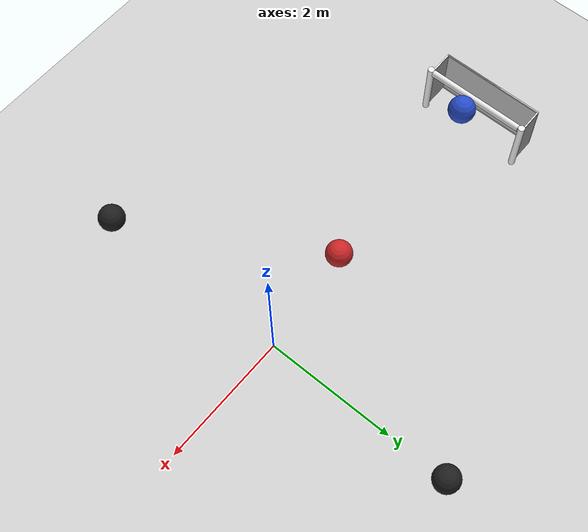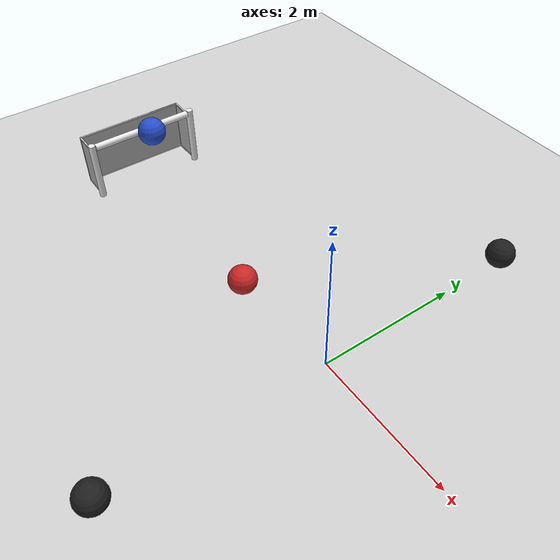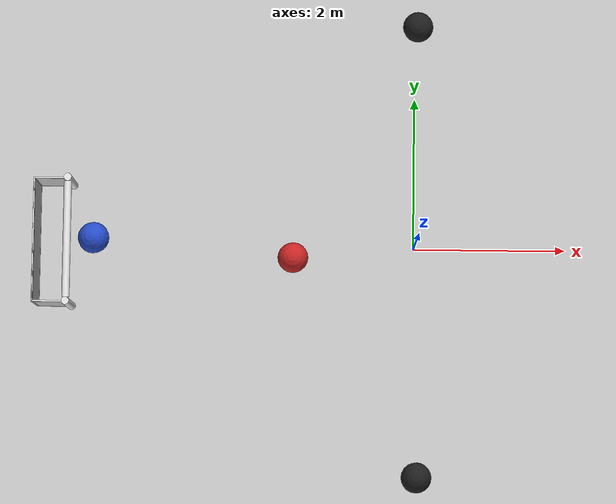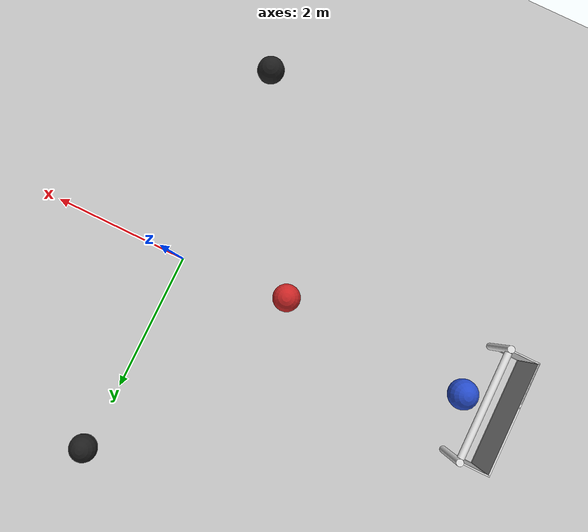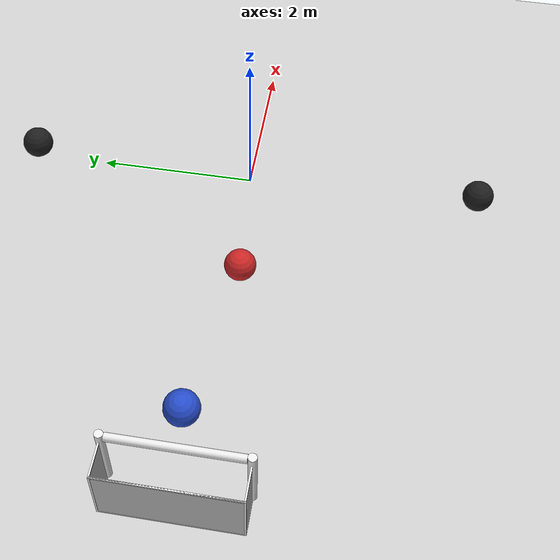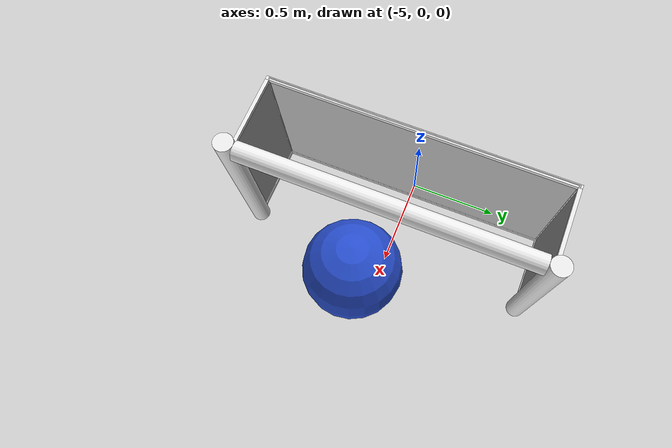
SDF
<sdf version="1.7">
 <world name="default">
  <light name="sun" type="directional">
   <pose>0 0 10 0 -0 0</pose>
   <diffuse>0.8 0.8 0.8 1</diffuse>
   <specular>0.2 0.2 0.2 1</specular>
   <attenuation>
    <range>1000</range>
    <constant>0.9</constant>
    <linear>0.01</linear>
    <quadratic>0.001</quadratic>
   </attenuation>
   <direction>-0.5 0.1 -0.9</direction>
   <spot><inner_angle>0</inner_angle><outer_angle>0</outer_angle><falloff>0</falloff></spot>
  </light>
  <model name="ground_plane">
   <static>1</static>
   <link name="link">
    <collision name="collision">
     <geometry><plane><normal>0 0 1</normal><size>100 100</size></plane></geometry>
     <surface>
      <contact><collide_bitmask>65535</collide_bitmask></contact>
      <friction><ode><mu>100</mu><mu2>50</mu2></ode></friction>
     </surface>
    </collision>
    <visual name="visual">
     <cast_shadows>0</cast_shadows>
     <geometry><plane><normal>0 0 1</normal><size>100 100</size></plane></geometry>
     <material>
      <script><uri>file://media/materials/scripts/gazebo.material</uri><name>Gazebo/Grey</name></script>
     </material>
    </visual>
   </link>
  </model>
  <model name="RoboCup 2014 SPL Goal">
   <static>1</static>
   <link name="left_post">
    <pose>0 0.8 0.45 0 -0 0</pose>
    <collision name="collision">
     <geometry><cylinder><radius>0.05</radius><length>0.9</length></cylinder></geometry>
    </collision>
    <visual name="visual">
     <geometry><cylinder><radius>0.05</radius><length>0.9</length></cylinder></geometry>
     <material>
      <script><uri>file://media/materials/scripts/gazebo.material</uri><name>Gazebo/White</name></script>
     </material>
    </visual>
   </link>
   <link name="left_support_horiz_lower">
    <pose>0.24 0.8 0.01 0 -0 0</pose>
    <collision name="collision"><geometry><box><size>0.38 0.02 0.02</size></box></geometry></collision>
    <visual name="visual">
     <geometry><box><size>0.38 0.02 0.02</size></box></geometry>
     <material>
      <script><uri>file://media/materials/scripts/gazebo.material</uri><name>Gazebo/White</name></script>
     </material>
    </visual>
   </link>
   <link name="left_support_horiz_upper">
    <pose>0.24 0.8 0.79 0 -0 0</pose>
    <collision name="collision"><geometry><box><size>0.38 0.02 0.02</size></box></geometry></collision>
    <visual name="visual">
     <geometry><box><size>0.38 0.02 0.02</size></box></geometry>
     <material>
      <script><uri>file://media/materials/scripts/gazebo.material</uri><name>Gazebo/White</name></script>
     </material>
    </visual>
   </link>
   <link name="left_support_vertical">
    <pose>0.44 0.8 0.4 3.14159 1.57079 3.14159</pose>
    <collision name="collision"><geometry><box><size>0.8 0.02 0.02</size></box></geometry></collision>
    <visual name="visual">
     <geometry><box><size>0.8 0.02 0.02</size></box></geometry>
     <material>
      <script><uri>file://media/materials/scripts/gazebo.material</uri><name>Gazebo/White</name></script>
     </material>
    </visual>
   </link>
   <link name="right_support_horiz_lower">
    <pose>0.24 -0.8 0.01 0 -0 0</pose>
    <collision name="collision"><geometry><box><size>0.38 0.02 0.02</size></box></geometry></collision>
    <visual name="visual">
     <geometry><box><size>0.38 0.02 0.02</size></box></geometry>
     <material>
      <script><uri>file://media/materials/scripts/gazebo.material</uri><name>Gazebo/White</name></script>
     </material>
    </visual>
   </link>
   <link name="right_support_horiz_upper">
    <pose>0.24 -0.8 0.79 0 -0 0</pose>
    <collision name="collision"><geometry><box><size>0.38 0.02 0.02</size></box></geometry></collision>
    <visual name="visual">
     <geometry><box><size>0.38 0.02 0.02</size></box></geometry>
     <material>
      <script><uri>file://media/materials/scripts/gazebo.material</uri><name>Gazebo/White</name></script>
     </material>
    </visual>
   </link>
   <link name="right_support_vertical">
    <pose>0.44 -0.8 0.4 3.14159 1.57079 3.14159</pose>
    <collision name="collision"><geometry><box><size>0.8 0.02 0.02</size></box></geometry></collision>
    <visual name="visual">
     <geometry><box><size>0.8 0.02 0.02</size></box></geometry>
     <material>
      <script><uri>file://media/materials/scripts/gazebo.material</uri><name>Gazebo/White</name></script>
     </material>
    </visual>
   </link>
   <link name="center_support_horiz_lower">
    <pose>0.44 0 0.01 3.14159 1.57079 3.14159</pose>
    <collision name="collision"><geometry><box><size>0.02 1.58 0.02</size></box></geometry></collision>
    <visual name="visual">
     <geometry><box><size>0.02 1.58 0.02</size></box></geometry>
     <material>
      <script><uri>file://media/materials/scripts/gazebo.material</uri><name>Gazebo/White</name></script>
     </material>
    </visual>
   </link>
   <link name="center_support_horiz_upper">
    <pose>0.44 0 0.79 3.14159 1.57079 3.14159</pose>
    <collision name="collision"><geometry><box><size>0.02 1.58 0.02</size></box></geometry></collision>
    <visual name="visual">
     <geometry><box><size>0.02 1.58 0.02</size></box></geometry>
     <material>
      <script><uri>file://media/materials/scripts/gazebo.material</uri><name>Gazebo/White</name></script>
     </material>
    </visual>
   </link>
   <link name="right_post">
    <pose>0 -0.8 0.45 0 -0 0</pose>
    <collision name="collision">
     <geometry><cylinder><radius>0.05</radius><length>0.9</length></cylinder></geometry>
    </collision>
    <visual name="visual">
     <geometry><cylinder><radius>0.05</radius><length>0.9</length></cylinder></geometry>
     <material>
      <script><uri>file://media/materials/scripts/gazebo.material</uri><name>Gazebo/White</name></script>
     </material>
    </visual>
   </link>
   <link name="crossbar">
    <pose>0 0 0.85 1.57 1.57 0</pose>
    <collision name="collision">
     <geometry><cylinder><radius>0.05</radius><length>1.5</length></cylinder></geometry>
    </collision>
    <visual name="visual">
     <geometry><cylinder><radius>0.05</radius><length>1.5</length></cylinder></geometry>
     <material>
      <script><uri>file://media/materials/scripts/gazebo.material</uri><name>Gazebo/White</name></script>
     </material>
    </visual>
   </link>
   <link name="center_net">
    <pose>0.44 0 0.4 0 -0 0</pose>
    <collision name="collision"><geometry><box><size>0.01 1.6 0.8</size></box></geometry></collision>
    <visual name="visual">
     <geometry><box><size>0.01 1.6 0.8</size></box></geometry>
     <material>
      <script>
       <uri>model://robocup09_spl_field/materials/scripts/</uri>
       <uri>model://robocup09_spl_field/materials/textures/</uri>
       <name>RoboCup/Net</name>
      </script>
     </material>
    </visual>
   </link>
   <link name="left_net">
    <pose>0.24 0.8 0.4 0 -0 0</pose>
    <collision name="collision"><geometry><box><size>0.38 0.01 0.76</size></box></geometry></collision>
    <visual name="visual">
     <geometry><box><size>0.38 0.01 0.76</size></box></geometry>
     <material>
      <script>
       <uri>model://robocup09_spl_field/materials/scripts/</uri>
       <uri>model://robocup09_spl_field/materials/textures/</uri>
       <name>RoboCup/Net</name>
      </script>
     </material>
    </visual>
   </link>
   <link name="right_net">
    <pose>0.24 -0.8 0.4 0 -0 0</pose>
    <collision name="collision"><geometry><box><size>0.38 0.01 0.76</size></box></geometry></collision>
    <visual name="visual">
     <geometry><box><size>0.38 0.01 0.76</size></box></geometry>
     <material>
      <script>
       <uri>model://robocup09_spl_field/materials/scripts/</uri>
       <uri>model://robocup09_spl_field/materials/textures/</uri>
       <name>RoboCup/Net</name>
      </script>
     </material>
    </visual>
   </link>
   <pose>-4.49999 -0 -0 0 0 -3.14159</pose>
  </model>
  <model name="RoboCup 2014 SPL Goal">
   <static>1</static>
   <link name="left_post">
    <pose>0 0.8 0.45 0 -0 0</pose>
    <collision name="collision">
     <geometry><cylinder><radius>0.05</radius><length>0.9</length></cylinder></geometry>
    </collision>
    <visual name="visual">
     <geometry><cylinder><radius>0.05</radius><length>0.9</length></cylinder></geometry>
     <material>
      <script><uri>file://media/materials/scripts/gazebo.material</uri><name>Gazebo/White</name></script>
     </material>
    </visual>
   </link>
   <link name="left_support_horiz_lower">
    <pose>0.24 0.8 0.01 0 -0 0</pose>
    <collision name="collision"><geometry><box><size>0.38 0.02 0.02</size></box></geometry></collision>
    <visual name="visual">
     <geometry><box><size>0.38 0.02 0.02</size></box></geometry>
     <material>
      <script><uri>file://media/materials/scripts/gazebo.material</uri><name>Gazebo/White</name></script>
     </material>
    </visual>
   </link>
   <link name="left_support_horiz_upper">
    <pose>0.24 0.8 0.79 0 -0 0</pose>
    <collision name="collision"><geometry><box><size>0.38 0.02 0.02</size></box></geometry></collision>
    <visual name="visual">
     <geometry><box><size>0.38 0.02 0.02</size></box></geometry>
     <material>
      <script><uri>file://media/materials/scripts/gazebo.material</uri><name>Gazebo/White</name></script>
     </material>
    </visual>
   </link>
   <link name="left_support_vertical">
    <pose>0.44 0.8 0.4 3.14159 1.57079 3.14159</pose>
    <collision name="collision"><geometry><box><size>0.8 0.02 0.02</size></box></geometry></collision>
    <visual name="visual">
     <geometry><box><size>0.8 0.02 0.02</size></box></geometry>
     <material>
      <script><uri>file://media/materials/scripts/gazebo.material</uri><name>Gazebo/White</name></script>
     </material>
    </visual>
   </link>
   <link name="right_support_horiz_lower">
    <pose>0.24 -0.8 0.01 0 -0 0</pose>
    <collision name="collision"><geometry><box><size>0.38 0.02 0.02</size></box></geometry></collision>
    <visual name="visual">
     <geometry><box><size>0.38 0.02 0.02</size></box></geometry>
     <material>
      <script><uri>file://media/materials/scripts/gazebo.material</uri><name>Gazebo/White</name></script>
     </material>
    </visual>
   </link>
   <link name="right_support_horiz_upper">
    <pose>0.24 -0.8 0.79 0 -0 0</pose>
    <collision name="collision"><geometry><box><size>0.38 0.02 0.02</size></box></geometry></collision>
    <visual name="visual">
     <geometry><box><size>0.38 0.02 0.02</size></box></geometry>
     <material>
      <script><uri>file://media/materials/scripts/gazebo.material</uri><name>Gazebo/White</name></script>
     </material>
    </visual>
   </link>
   <link name="right_support_vertical">
    <pose>0.44 -0.8 0.4 3.14159 1.57079 3.14159</pose>
    <collision name="collision"><geometry><box><size>0.8 0.02 0.02</size></box></geometry></collision>
    <visual name="visual">
     <geometry><box><size>0.8 0.02 0.02</size></box></geometry>
     <material>
      <script><uri>file://media/materials/scripts/gazebo.material</uri><name>Gazebo/White</name></script>
     </material>
    </visual>
   </link>
   <link name="center_support_horiz_lower">
    <pose>0.44 0 0.01 3.14159 1.57079 3.14159</pose>
    <collision name="collision"><geometry><box><size>0.02 1.58 0.02</size></box></geometry></collision>
    <visual name="visual">
     <geometry><box><size>0.02 1.58 0.02</size></box></geometry>
     <material>
      <script><uri>file://media/materials/scripts/gazebo.material</uri><name>Gazebo/White</name></script>
     </material>
    </visual>
   </link>
   <link name="center_support_horiz_upper">
    <pose>0.44 0 0.79 3.14159 1.57079 3.14159</pose>
    <collision name="collision"><geometry><box><size>0.02 1.58 0.02</size></box></geometry></collision>
    <visual name="visual">
     <geometry><box><size>0.02 1.58 0.02</size></box></geometry>
     <material>
      <script><uri>file://media/materials/scripts/gazebo.material</uri><name>Gazebo/White</name></script>
     </material>
    </visual>
   </link>
   <link name="right_post">
    <pose>0 -0.8 0.45 0 -0 0</pose>
    <collision name="collision">
     <geometry><cylinder><radius>0.05</radius><length>0.9</length></cylinder></geometry>
    </collision>
    <visual name="visual">
     <geometry><cylinder><radius>0.05</radius><length>0.9</length></cylinder></geometry>
     <material>
      <script><uri>file://media/materials/scripts/gazebo.material</uri><name>Gazebo/White</name></script>
     </material>
    </visual>
   </link>
   <link name="crossbar">
    <pose>0 0 0.85 1.57 1.57 0</pose>
    <collision name="collision">
     <geometry><cylinder><radius>0.05</radius><length>1.5</length></cylinder></geometry>
    </collision>
    <visual name="visual">
     <geometry><cylinder><radius>0.05</radius><length>1.5</length></cylinder></geometry>
     <material>
      <script><uri>file://media/materials/scripts/gazebo.material</uri><name>Gazebo/White</name></script>
     </material>
    </visual>
   </link>
   <link name="center_net">
    <pose>0.44 0 0.4 0 -0 0</pose>
    <collision name="collision"><geometry><box><size>0.01 1.6 0.8</size></box></geometry></collision>
    <visual name="visual">
     <geometry><box><size>0.01 1.6 0.8</size></box></geometry>
     <material>
      <script>
       <uri>model://robocup09_spl_field/materials/scripts/</uri>
       <uri>model://robocup09_spl_field/materials/textures/</uri>
       <name>RoboCup/Net</name>
      </script>
     </material>
    </visual>
   </link>
   <link name="left_net">
    <pose>0.24 0.8 0.4 0 -0 0</pose>
    <collision name="collision"><geometry><box><size>0.38 0.01 0.76</size></box></geometry></collision>
    <visual name="visual">
     <geometry><box><size>0.38 0.01 0.76</size></box></geometry>
     <material>
      <script>
       <uri>model://robocup09_spl_field/materials/scripts/</uri>
       <uri>model://robocup09_spl_field/materials/textures/</uri>
       <name>RoboCup/Net</name>
      </script>
     </material>
    </visual>
   </link>
   <link name="right_net">
    <pose>0.24 -0.8 0.4 0 -0 0</pose>
    <collision name="collision"><geometry><box><size>0.38 0.01 0.76</size></box></geometry></collision>
    <visual name="visual">
     <geometry><box><size>0.38 0.01 0.76</size></box></geometry>
     <material>
      <script>
       <uri>model://robocup09_spl_field/materials/scripts/</uri>
       <uri>model://robocup09_spl_field/materials/textures/</uri>
       <name>RoboCup/Net</name>
      </script>
     </material>
    </visual>
   </link>
   <pose>-4.49999 -0 -0 0 0 -3.14159</pose>
  </model>
  <gravity>0 0 -9.8</gravity>
  <magnetic_field>6e-06 2.3e-05 -4.2e-05</magnetic_field>
  <atmosphere type="adiabatic"/>
  <physics type="ode">
   <max_step_size>0.001</max_step_size>
   <real_time_factor>1</real_time_factor>
   <real_time_update_rate>1000</real_time_update_rate>
  </physics>
  <scene><ambient>0.4 0.4 0.4 1</ambient><background>0.7 0.7 0.7 1</background><shadows>1</shadows></scene>
  <spherical_coordinates>
   <surface_model>EARTH_WGS84</surface_model>
   <latitude_deg>0</latitude_deg>
   <longitude_deg>0</longitude_deg>
   <elevation>0</elevation>
   <heading_deg>0</heading_deg>
  </spherical_coordinates>
  <model name="unit_sphere">
   <pose>-1.58822 -0.14543 0.21 0 -0 0</pose>
   <link name="link">
    <inertial>
     <mass>1</mass>
     <inertia><ixx>0.1</ixx><ixy>0</ixy><ixz>0</ixz><iyy>0.1</iyy><iyz>0</iyz><izz>0.1</izz></inertia>
    </inertial>
    <collision name="collision"><geometry><sphere><radius>0.2</radius></sphere></geometry></collision>
    <visual name="visual">
     <geometry><sphere><radius>0.2</radius></sphere></geometry>
     <material>
      <script><name>Gazebo/Red</name><uri>file://media/materials/scripts/gazebo.material</uri></script>
     </material>
    </visual>
   </link>
  </model>
  <model name="unit_sphere_0">
   <pose>-4.13526 -0.001202 1.03375 7.4e-05 -0.128308 7e-06</pose>
   <link name="unit_sphere_0::link">
    <inertial>
     <mass>1</mass>
     <inertia><ixx>0.1</ixx><ixy>0</ixy><ixz>0</ixz><iyy>0.1</iyy><iyz>0</iyz><izz>0.1</izz></inertia>
    </inertial>
    <collision name="collision"><geometry><sphere><radius>0.2</radius></sphere></geometry></collision>
    <visual name="visual">
     <geometry><sphere><radius>0.2</radius></sphere></geometry>
     <material>
      <script><name>Gazebo/Blue</name><uri>file://media/materials/scripts/gazebo.material</uri></script>
     </material>
    </visual>
    <gravity>0</gravity>
   </link>
  </model>
  <model name="unit_sphere_clone">
   <pose>0.050317 -3.00689 0.21 0 -0 0</pose>
   <link name="link">
    <inertial>
     <mass>1</mass>
     <inertia><ixx>0.1</ixx><ixy>0</ixy><ixz>0</ixz><iyy>0.1</iyy><iyz>0</iyz><izz>0.1</izz></inertia>
    </inertial>
    <collision name="collision"><geometry><sphere><radius>0.2</radius></sphere></geometry></collision>
    <visual name="visual">
     <geometry><sphere><radius>0.2</radius></sphere></geometry>
     <material>
      <script><name>Gazebo/Black</name><uri>file://media/materials/scripts/gazebo.material</uri></script>
     </material>
    </visual>
   </link>
  </model>
  <model name="unit_sphere_clone_0">
   <pose>0.032615 2.94486 0.21 0 -0 0</pose>
   <link name="link">
    <inertial>
     <mass>1</mass>
     <inertia><ixx>0.1</ixx><ixy>0</ixy><ixz>0</ixz><iyy>0.1</iyy><iyz>0</iyz><izz>0.1</izz></inertia>
    </inertial>
    <collision name="collision"><geometry><sphere><radius>0.2</radius></sphere></geometry></collision>
    <visual name="visual">
     <geometry><sphere><radius>0.2</radius></sphere></geometry>
     <material>
      <script><name>Gazebo/Black</name><uri>file://media/materials/scripts/gazebo.material</uri></script>
     </material>
    </visual>
   </link>
  </model>
 </world>
</sdf>
